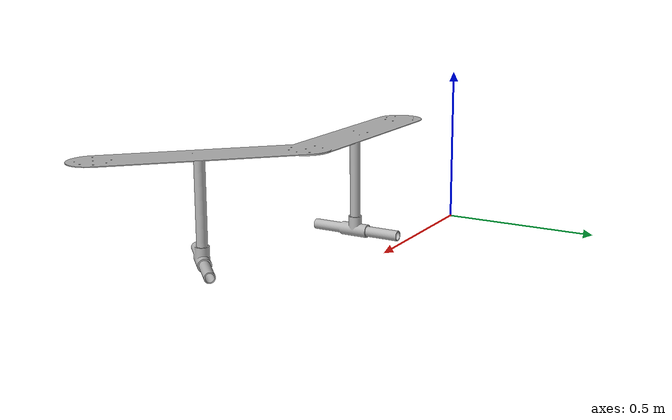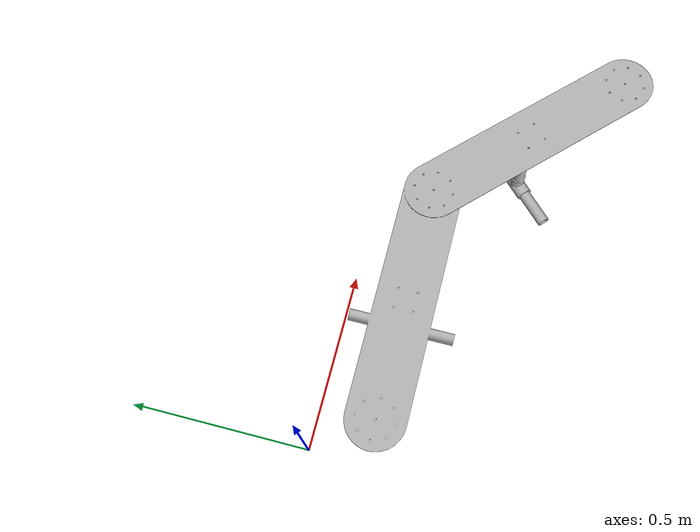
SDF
<?xml version="1.0"?>
<sdf version="1.5">
  <model name="pathmarkers2018">
    <static>true</static>
    <link name="pathmarkers2018">

    <!-- Change this to reflect real values -->

    <inertial>
      <mass>.5</mass>
      <inertia>
        <ixx>0</ixx>
        <ixy>0</ixy>
        <ixz>0</ixz>
        <iyy>0</iyy>
        <iyz>0</iyz>
        <izz>0</izz>
      </inertia>
    </inertial>
    <velocity_decay>
      <linear>0.00001</linear>
      <angular>0.00001</angular>
    </velocity_decay>

      <!--- Stolen again from the Torpedo for now. -->
      <collision name='pathmarkers2018col'>
        <pose>0 0 0 0 0 0</pose>
        <geometry>
          <mesh>
            <uri>file://markers/PathMarkers2018s.dae</uri>
          </mesh>
        </geometry>
      </collision>

      <sensor name="contact" type="contact">
        <contact>
          <collision>pathmarkers2018col</collision>
        </contact>
        <update_rate>50</update_rate>
        <plugin name='gazebo_ros_bumper_controller' filename="libgazebo_ros_bumper.so">
          <alwaysOn>true</alwaysOn>
          <bumperTopicName>contact_bumper</bumperTopicName>
        </plugin>
      </sensor>

      <visual name="pathmarkers2018vis">
        <pose>0 0 0 0 0 0</pose>
        <geometry>
          <mesh>
            <uri>file://markers/PathMarkers2018s.dae</uri>
          </mesh>
        </geometry>
      </visual>
    </link>
  </model>
</sdf>
